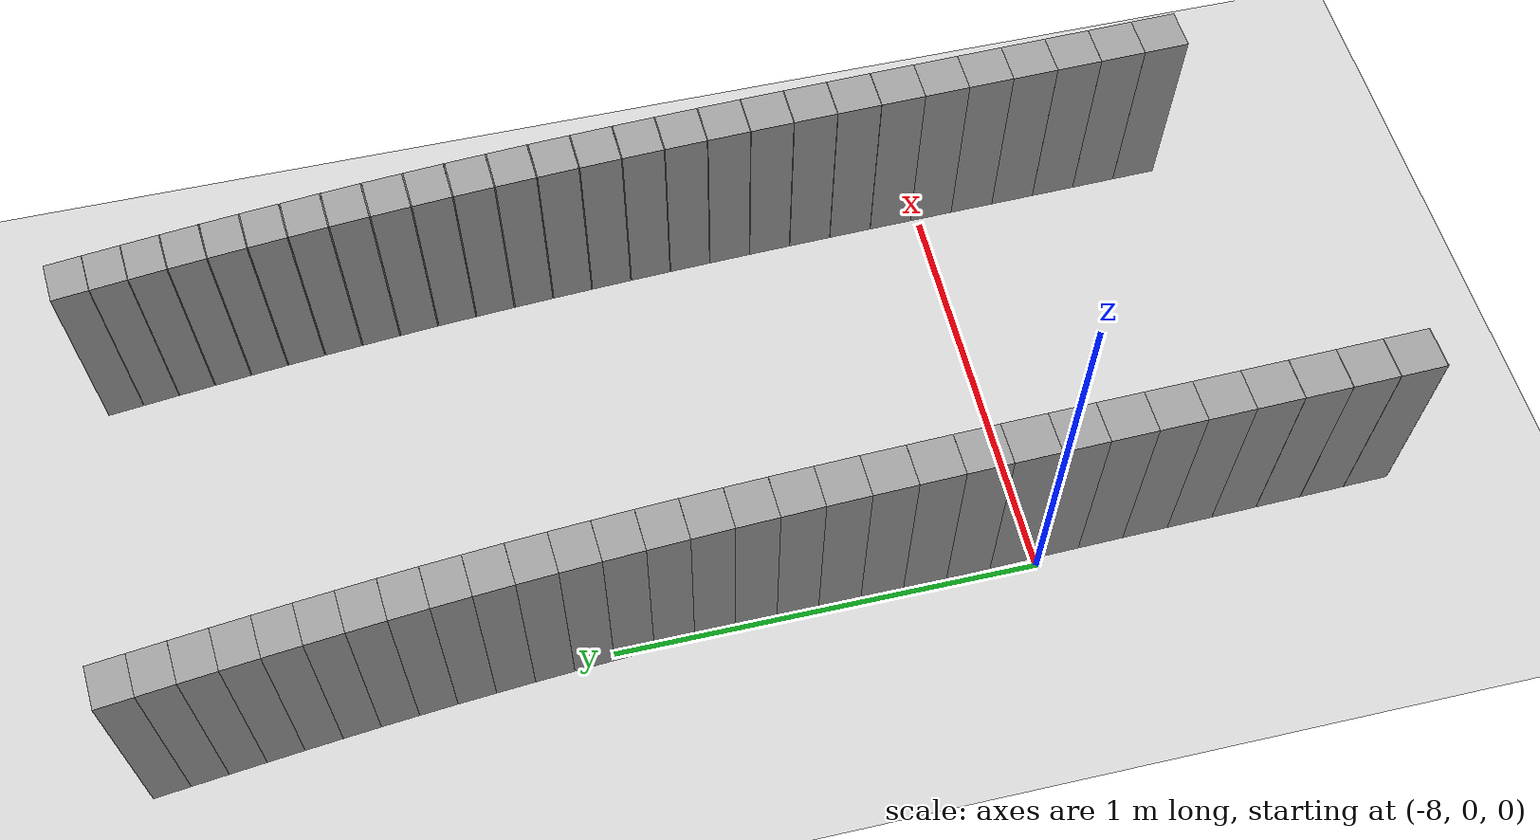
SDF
<sdf version="1.6">
 <world name="default">
  <include><uri>model://ground_plane</uri></include>
  <include><uri>model://sun</uri></include>
  <model name="wall_565_outward">
   <static>true</static>
   <link name="link">
    <collision name="collision">
     <geometry><box><size>0.0009904711786838329 0.1 0.5</size></box></geometry>
    </collision>
    <visual name="visual">
     <geometry><box><size>0.0009904711786838329 0.1 0.5</size></box></geometry>
     <material>
      <script><uri>file://media/materials/scripts/gazebo.material</uri><name>Gazebo/Gray</name></script>
     </material>
    </visual>
   </link>
   <pose>-7.909470699778825 -0.8856533040867389 0.25 0 0 1.59776523668052</pose>
  </model>
  <model name="wall_566_outward">
   <static>true</static>
   <link name="link">
    <collision name="collision">
     <geometry><box><size>0.10948559991900621 0.1 0.5</size></box></geometry>
    </collision>
    <visual name="visual">
     <geometry><box><size>0.10948559991900621 0.1 0.5</size></box></geometry>
     <material>
      <script><uri>file://media/materials/scripts/gazebo.material</uri><name>Gazebo/Gray</name></script>
     </material>
    </visual>
   </link>
   <pose>-7.910906026632476 -0.8304339199764261 0.25 0 0 1.5967747653396367</pose>
  </model>
  <model name="wall_567_outward">
   <static>true</static>
   <link name="link">
    <collision name="collision">
     <geometry><box><size>0.0009114035161884509 0.1 0.5</size></box></geometry>
    </collision>
    <visual name="visual">
     <geometry><box><size>0.0009114035161884509 0.1 0.5</size></box></geometry>
     <material>
      <script><uri>file://media/materials/scripts/gazebo.material</uri><name>Gazebo/Gray</name></script>
     </material>
    </visual>
   </link>
   <pose>-7.91233942103672 -0.7752540327744066 0.25 0 0 1.595863361697549</pose>
  </model>
  <model name="wall_568_outward">
   <static>true</static>
   <link name="link">
    <collision name="collision">
     <geometry><box><size>0.11027289737922352 0.1 0.5</size></box></geometry>
    </collision>
    <visual name="visual">
     <geometry><box><size>0.11027289737922352 0.1 0.5</size></box></geometry>
     <material>
      <script><uri>file://media/materials/scripts/gazebo.material</uri><name>Gazebo/Gray</name></script>
     </material>
    </visual>
   </link>
   <pose>-7.9136825691378965 -0.7196781106164452 0.25 0 0 1.5949519580549052</pose>
  </model>
  <model name="wall_569_outward">
   <static>true</static>
   <link name="link">
    <collision name="collision">
     <geometry><box><size>0.0007943153665070257 0.1 0.5</size></box></geometry>
    </collision>
    <visual name="visual">
     <geometry><box><size>0.0007943153665070257 0.1 0.5</size></box></geometry>
     <material>
      <script><uri>file://media/materials/scripts/gazebo.material</uri><name>Gazebo/Gray</name></script>
     </material>
    </visual>
   </link>
   <pose>-7.915023572625618 -0.6641606977389876 0.25 0 0 1.594157642605008</pose>
  </model>
  <model name="wall_570_outward">
   <static>true</static>
   <link name="link">
    <collision name="collision">
     <geometry><box><size>0.1107700738860688 0.1 0.5</size></box></geometry>
    </collision>
    <visual name="visual">
     <geometry><box><size>0.1107700738860688 0.1 0.5</size></box></geometry>
     <material>
      <script><uri>file://media/materials/scripts/gazebo.material</uri><name>Gazebo/Gray</name></script>
     </material>
    </visual>
   </link>
   <pose>-7.91628261797198 -0.6083927138390616 0.25 0 0 1.5933633271548366</pose>
  </model>
  <model name="wall_571_outward">
   <static>true</static>
   <link name="link">
    <collision name="collision">
     <geometry><box><size>0.0006459807935049317 0.1 0.5</size></box></geometry>
    </collision>
    <visual name="visual">
     <geometry><box><size>0.0006459807935049317 0.1 0.5</size></box></geometry>
     <material>
      <script><uri>file://media/materials/scripts/gazebo.material</uri><name>Gazebo/Gray</name></script>
     </material>
    </visual>
   </link>
   <pose>-7.917539465747936 -0.5526988664563061 0.25 0 0 1.5927173463156892</pose>
  </model>
  <model name="wall_572_outward">
   <static>true</static>
   <link name="link">
    <collision name="collision">
     <geometry><box><size>0.11097578941109719 0.1 0.5</size></box></geometry>
    </collision>
    <visual name="visual">
     <geometry><box><size>0.11097578941109719 0.1 0.5</size></box></geometry>
     <material>
      <script><uri>file://media/materials/scripts/gazebo.material</uri><name>Gazebo/Gray</name></script>
     </material>
    </visual>
   </link>
   <pose>-7.918726963513059 -0.49690061614788367 0.25 0 0 1.5920713654779728</pose>
  </model>
  <model name="wall_573_outward">
   <static>true</static>
   <link name="link">
    <collision name="collision">
     <geometry><box><size>0.11136111577710493 0.1 0.5</size></box></geometry>
    </collision>
    <visual name="visual">
     <geometry><box><size>0.11136111577710493 0.1 0.5</size></box></geometry>
     <material>
      <script><uri>file://media/materials/scripts/gazebo.material</uri><name>Gazebo/Gray</name></script>
     </material>
    </visual>
   </link>
   <pose>-7.921040506015078 -0.38575625173790984 0.25 0 0 1.5911481824226106</pose>
  </model>
  <model name="wall_574_outward">
   <static>true</static>
   <link name="link">
    <collision name="collision">
     <geometry><box><size>0.11080351393382115 0.1 0.5</size></box></geometry>
    </collision>
    <visual name="visual">
     <geometry><box><size>0.11080351393382115 0.1 0.5</size></box></geometry>
     <material>
      <script><uri>file://media/materials/scripts/gazebo.material</uri><name>Gazebo/Gray</name></script>
     </material>
    </visual>
   </link>
   <pose>-7.923272676933879 -0.27469637025297305 0.25 0 0 1.590635382971243</pose>
  </model>
  <model name="wall_575_outward">
   <static>true</static>
   <link name="link">
    <collision name="collision">
     <geometry><box><size>0.10985988575670115 0.1 0.5</size></box></geometry>
    </collision>
    <visual name="visual">
     <geometry><box><size>0.10985988575670115 0.1 0.5</size></box></geometry>
     <material>
      <script><uri>file://media/materials/scripts/gazebo.material</uri><name>Gazebo/Gray</name></script>
     </material>
    </visual>
   </link>
   <pose>-7.925458601188822 -0.1643863266579525 0.25 0 0 1.5905842359200444</pose>
  </model>
  <model name="wall_576_outward">
   <static>true</static>
   <link name="link">
    <collision name="collision">
     <geometry><box><size>0.10876825885237916 0.1 0.5</size></box></geometry>
    </collision>
    <visual name="visual">
     <geometry><box><size>0.10876825885237916 0.1 0.5</size></box></geometry>
     <material>
      <script><uri>file://media/materials/scripts/gazebo.material</uri><name>Gazebo/Gray</name></script>
     </material>
    </visual>
   </link>
   <pose>-7.927645987888699 -0.05509414422880934 0.25 0 0 1.5910335549778727</pose>
  </model>
  <model name="wall_577_outward">
   <static>true</static>
   <link name="link">
    <collision name="collision">
     <geometry><box><size>0.10749119447446537 0.1 0.5</size></box></geometry>
    </collision>
    <visual name="visual">
     <geometry><box><size>0.10749119447446537 0.1 0.5</size></box></geometry>
     <material>
      <script><uri>file://media/materials/scripts/gazebo.material</uri><name>Gazebo/Gray</name></script>
     </material>
    </visual>
   </link>
   <pose>-7.929886258337165 0.05301235983541928 0.25 0 0 1.5920045194320525</pose>
  </model>
  <model name="wall_578_outward">
   <static>true</static>
   <link name="link">
    <collision name="collision">
     <geometry><box><size>0.10605782925495823 0.1 0.5</size></box></geometry>
    </collision>
    <visual name="visual">
     <geometry><box><size>0.10605782925495823 0.1 0.5</size></box></geometry>
     <material>
      <script><uri>file://media/materials/scripts/gazebo.material</uri><name>Gazebo/Gray</name></script>
     </material>
    </visual>
   </link>
   <pose>-7.9322309024696755 0.1597610951266567 0.25 0 0 1.5935195204096275</pose>
  </model>
  <model name="wall_579_outward">
   <static>true</static>
   <link name="link">
    <collision name="collision">
     <geometry><box><size>0.10451509297985792 0.1 0.5</size></box></geometry>
    </collision>
    <visual name="visual">
     <geometry><box><size>0.10451509297985792 0.1 0.5</size></box></geometry>
     <material>
      <script><uri>file://media/materials/scripts/gazebo.material</uri><name>Gazebo/Gray</name></script>
     </material>
    </visual>
   </link>
   <pose>-7.9347313731540225 0.2650178034506897 0.25 0 0 1.595591230758415</pose>
  </model>
  <model name="wall_580_outward">
   <static>true</static>
   <link name="link">
    <collision name="collision">
     <geometry><box><size>0.10291101563685588 0.1 0.5</size></box></geometry>
    </collision>
    <visual name="visual">
     <geometry><box><size>0.10291101563685588 0.1 0.5</size></box></geometry>
     <material>
      <script><uri>file://media/materials/scripts/gazebo.material</uri><name>Gazebo/Gray</name></script>
     </material>
    </visual>
   </link>
   <pose>-7.937438138534475 0.3686954403993111 0.25 0 0 1.598224960108446</pose>
  </model>
  <model name="wall_581_outward">
   <static>true</static>
   <link name="link">
    <collision name="collision">
     <geometry><box><size>0.10128633151817584 0.1 0.5</size></box></geometry>
    </collision>
    <visual name="visual">
     <geometry><box><size>0.10128633151817584 0.1 0.5</size></box></geometry>
     <material>
      <script><uri>file://media/materials/scripts/gazebo.material</uri><name>Gazebo/Gray</name></script>
     </material>
    </visual>
   </link>
   <pose>-7.9403999589887855 0.47075101429193406 0.25 0 0 1.6014201144691298</pose>
  </model>
  <model name="wall_582_outward">
   <static>true</static>
   <link name="link">
    <collision name="collision">
     <geometry><box><size>0.09967947623095003 0.1 0.5</size></box></geometry>
    </collision>
    <visual name="visual">
     <geometry><box><size>0.09967947623095003 0.1 0.5</size></box></geometry>
     <material>
      <script><uri>file://media/materials/scripts/gazebo.material</uri><name>Gazebo/Gray</name></script>
     </material>
    </visual>
   </link>
   <pose>-7.943663322600219 0.5711807358953906 0.25 0 0 1.605167649654883</pose>
  </model>
  <model name="wall_583_outward">
   <static>true</static>
   <link name="link">
    <collision name="collision">
     <geometry><box><size>0.09811929125582569 0.1 0.5</size></box></geometry>
    </collision>
    <visual name="visual">
     <geometry><box><size>0.09811929125582569 0.1 0.5</size></box></geometry>
     <material>
      <script><uri>file://media/materials/scripts/gazebo.material</uri><name>Gazebo/Gray</name></script>
     </material>
    </visual>
   </link>
   <pose>-7.94727191545897 0.6700140365520986 0.25 0 0 1.6094501852731933</pose>
  </model>
  <model name="wall_584_outward">
   <static>true</static>
   <link name="link">
    <collision name="collision">
     <geometry><box><size>0.09662949895267918 0.1 0.5</size></box></geometry>
    </collision>
    <visual name="visual">
     <geometry><box><size>0.09662949895267918 0.1 0.5</size></box></geometry>
     <material>
      <script><uri>file://media/materials/scripts/gazebo.material</uri><name>Gazebo/Gray</name></script>
     </material>
    </visual>
   </link>
   <pose>-7.9512660010502225 0.7673062035931835 0.25 0 0 1.6142379942648704</pose>
  </model>
  <model name="wall_585_outward">
   <static>true</static>
   <link name="link">
    <collision name="collision">
     <geometry><box><size>0.09521974723458548 0.1 0.5</size></box></geometry>
    </collision>
    <visual name="visual">
     <geometry><box><size>0.09521974723458548 0.1 0.5</size></box></geometry>
     <material>
      <script><uri>file://media/materials/scripts/gazebo.material</uri><name>Gazebo/Gray</name></script>
     </material>
    </visual>
   </link>
   <pose>-7.955681642949812 0.8631288102689685 0.25 0 0 1.6194909488719353</pose>
  </model>
  <model name="wall_586_outward">
   <static>true</static>
   <link name="link">
    <collision name="collision">
     <geometry><box><size>0.09389558301838698 0.1 0.5</size></box></geometry>
    </collision>
    <visual name="visual">
     <geometry><box><size>0.09389558301838698 0.1 0.5</size></box></geometry>
     <material>
      <script><uri>file://media/materials/scripts/gazebo.material</uri><name>Gazebo/Gray</name></script>
     </material>
    </visual>
   </link>
   <pose>-7.960549550287578 0.9575607114370959 0.25 0 0 1.6251489331067197</pose>
  </model>
  <model name="wall_587_outward">
   <static>true</static>
   <link name="link">
    <collision name="collision">
     <geometry><box><size>0.09265575094804471 0.1 0.5</size></box></geometry>
    </collision>
    <visual name="visual">
     <geometry><box><size>0.09265575094804471 0.1 0.5</size></box></geometry>
     <material>
      <script><uri>file://media/materials/scripts/gazebo.material</uri><name>Gazebo/Gray</name></script>
     </material>
    </visual>
   </link>
   <pose>-7.9658941887946915 1.0506827103212364 0.25 0 0 1.6311456661804231</pose>
  </model>
  <model name="wall_588_outward">
   <static>true</static>
   <link name="link">
    <collision name="collision">
     <geometry><box><size>0.09149661331062425 0.1 0.5</size></box></geometry>
    </collision>
    <visual name="visual">
     <geometry><box><size>0.09149661331062425 0.1 0.5</size></box></geometry>
     <material>
      <script><uri>file://media/materials/scripts/gazebo.material</uri><name>Gazebo/Gray</name></script>
     </material>
    </visual>
   </link>
   <pose>-7.971732469527199 1.1425731627949953 0.25 0 0 1.637386151527532</pose>
  </model>
  <model name="wall_589_outward">
   <static>true</static>
   <link name="link">
    <collision name="collision">
     <geometry><box><size>0.09041226791227094 0.1 0.5</size></box></geometry>
    </collision>
    <visual name="visual">
     <geometry><box><size>0.09041226791227094 0.1 0.5</size></box></geometry>
     <material>
      <script><uri>file://media/materials/scripts/gazebo.material</uri><name>Gazebo/Gray</name></script>
     </material>
    </visual>
   </link>
   <pose>-7.978072095128342 1.23330593185424 0.25 0 0 1.6437605546736738</pose>
  </model>
  <model name="wall_590_outward">
   <static>true</static>
   <link name="link">
    <collision name="collision">
     <geometry><box><size>0.08939809585021044 0.1 0.5</size></box></geometry>
    </collision>
    <visual name="visual">
     <geometry><box><size>0.08939809585021044 0.1 0.5</size></box></geometry>
     <material>
      <script><uri>file://media/materials/scripts/gazebo.material</uri><name>Gazebo/Gray</name></script>
     </material>
    </visual>
   </link>
   <pose>-7.984910542884312 1.3229502015068886 0.25 0 0 1.650141714351915</pose>
  </model>
  <model name="wall_591_outward">
   <static>true</static>
   <link name="link">
    <collision name="collision">
     <geometry><box><size>0.08845018340987948 0.1 0.5</size></box></geometry>
    </collision>
    <visual name="visual">
     <geometry><box><size>0.08845018340987948 0.1 0.5</size></box></geometry>
     <material>
      <script><uri>file://media/materials/scripts/gazebo.material</uri><name>Gazebo/Gray</name></script>
     </material>
    </visual>
   </link>
   <pose>-7.992233909618109 1.4115718350079118 0.25 0 0 1.6563821958537863</pose>
  </model>
  <model name="wall_592_outward">
   <static>true</static>
   <link name="link">
    <collision name="collision">
     <geometry><box><size>0.08757070985106806 0.1 0.5</size></box></geometry>
    </collision>
    <visual name="visual">
     <geometry><box><size>0.08757070985106806 0.1 0.5</size></box></geometry>
     <material>
      <script><uri>file://media/materials/scripts/gazebo.material</uri><name>Gazebo/Gray</name></script>
     </material>
    </visual>
   </link>
   <pose>-8.0000165715398 1.499237109703999 0.25 0 0 1.6623299547498702</pose>
  </model>
  <model name="wall_593_outward">
   <static>true</static>
   <link name="link">
    <collision name="collision">
     <geometry><box><size>0.08676839551176398 0.1 0.5</size></box></geometry>
    </collision>
    <visual name="visual">
     <geometry><box><size>0.08676839551176398 0.1 0.5</size></box></geometry>
     <material>
      <script><uri>file://media/materials/scripts/gazebo.material</uri><name>Gazebo/Gray</name></script>
     </material>
    </visual>
   </link>
   <pose>-8.008220946401357 1.586019378409231 0.25 0 0 1.667807110628891</pose>
  </model>
  <model name="wall_594_outward">
   <static>true</static>
   <link name="link">
    <collision name="collision">
     <geometry><box><size>0.0860488833883912 0.1 0.5</size></box></geometry>
    </collision>
    <visual name="visual">
     <geometry><box><size>0.0860488833883912 0.1 0.5</size></box></geometry>
     <material>
      <script><uri>file://media/materials/scripts/gazebo.material</uri><name>Gazebo/Gray</name></script>
     </material>
    </visual>
   </link>
   <pose>-8.016797108859137 1.6720011141656599 0.25 0 0 1.6726360139932617</pose>
  </model>
  <model name="wall_595_outward">
   <static>true</static>
   <link name="link">
    <collision name="collision">
     <geometry><box><size>0.08542233456842228 0.1 0.5</size></box></geometry>
    </collision>
    <visual name="visual">
     <geometry><box><size>0.08542233456842228 0.1 0.5</size></box></geometry>
     <material>
      <script><uri>file://media/materials/scripts/gazebo.material</uri><name>Gazebo/Gray</name></script>
     </material>
    </visual>
   </link>
   <pose>-8.025683353004805 1.7572747904641042 0.25 0 0 1.6766387668226348</pose>
  </model>
  <model name="wall_596_outward">
   <static>true</static>
   <link name="link">
    <collision name="collision">
     <geometry><box><size>0.0848913991797672 0.1 0.5</size></box></geometry>
    </collision>
    <visual name="visual">
     <geometry><box><size>0.0848913991797672 0.1 0.5</size></box></geometry>
     <material>
      <script><uri>file://media/materials/scripts/gazebo.material</uri><name>Gazebo/Gray</name></script>
     </material>
    </visual>
   </link>
   <pose>-8.034806338398889 1.8419414710402977 0.25 0 0 1.679638526341286</pose>
  </model>
  <model name="wall_597_outward">
   <static>true</static>
   <link name="link">
    <collision name="collision">
     <geometry><box><size>0.08446162881735658 0.1 0.5</size></box></geometry>
    </collision>
    <visual name="visual">
     <geometry><box><size>0.08446162881735658 0.1 0.5</size></box></geometry>
     <material>
      <script><uri>file://media/materials/scripts/gazebo.material</uri><name>Gazebo/Gray</name></script>
     </material>
    </visual>
   </link>
   <pose>-8.04408253425917 1.9261083173837639 0.25 0 0 1.681496803564057</pose>
  </model>
  <model name="wall_598_outward">
   <static>true</static>
   <link name="link">
    <collision name="collision">
     <geometry><box><size>0.08393782488730488 0.1 0.5</size></box></geometry>
    </collision>
    <visual name="visual">
     <geometry><box><size>0.08393782488730488 0.1 0.5</size></box></geometry>
     <material>
      <script><uri>file://media/materials/scripts/gazebo.material</uri><name>Gazebo/Gray</name></script>
     </material>
    </visual>
   </link>
   <pose>-8.0534088474611 2.0097899359035707 0.25 0 0 1.6820815232842583</pose>
  </model>
  <model name="wall_342_inward">
   <static>true</static>
   <link name="link">
    <collision name="collision">
     <geometry><box><size>0.1100499256138075 0.1 0.5</size></box></geometry>
    </collision>
    <visual name="visual">
     <geometry><box><size>0.1100499256138075 0.1 0.5</size></box></geometry>
     <material>
      <script><uri>file://media/materials/scripts/gazebo.material</uri><name>Gazebo/Gray</name></script>
     </material>
    </visual>
   </link>
   <pose>-6.9165380787145265 -0.5857905546479117 0.25 0 0 1.5933633271548302</pose>
  </model>
  <model name="wall_343_inward">
   <static>true</static>
   <link name="link">
    <collision name="collision">
     <geometry><box><size>0.11042152284930101 0.1 0.5</size></box></geometry>
    </collision>
    <visual name="visual">
     <geometry><box><size>0.11042152284930101 0.1 0.5</size></box></geometry>
     <material>
      <script><uri>file://media/materials/scripts/gazebo.material</uri><name>Gazebo/Gray</name></script>
     </material>
    </visual>
   </link>
   <pose>-6.918954244152119 -0.47558133556638077 0.25 0 0 1.5920713654779746</pose>
  </model>
  <model name="wall_344_inward">
   <static>true</static>
   <link name="link">
    <collision name="collision">
     <geometry><box><size>0.11053942047686938 0.1 0.5</size></box></geometry>
    </collision>
    <visual name="visual">
     <geometry><box><size>0.11053942047686938 0.1 0.5</size></box></geometry>
     <material>
      <script><uri>file://media/materials/scripts/gazebo.material</uri><name>Gazebo/Gray</name></script>
     </material>
    </visual>
   </link>
   <pose>-6.921253423976882 -0.3651248021266723 0.25 0 0 1.5911462611551643</pose>
  </model>
  <model name="wall_345_inward">
   <static>true</static>
   <link name="link">
    <collision name="collision">
     <geometry><box><size>0.11040727196843404 0.1 0.5</size></box></geometry>
    </collision>
    <visual name="visual">
     <geometry><box><size>0.11040727196843404 0.1 0.5</size></box></geometry>
     <material>
      <script><uri>file://media/materials/scripts/gazebo.material</uri><name>Gazebo/Gray</name></script>
     </material>
    </visual>
   </link>
   <pose>-6.923473164942806 -0.25467376239634926 0.25 0 0 1.590634792737394</pose>
  </model>
  <model name="wall_346_inward">
   <static>true</static>
   <link name="link">
    <collision name="collision">
     <geometry><box><size>0.1101589574333573 0.1 0.5</size></box></geometry>
    </collision>
    <visual name="visual">
     <geometry><box><size>0.1101589574333573 0.1 0.5</size></box></geometry>
     <material>
      <script><uri>file://media/materials/scripts/gazebo.material</uri><name>Gazebo/Gray</name></script>
     </material>
    </visual>
   </link>
   <pose>-6.9256581100653944 -0.14441229407985653 0.25 0 0 1.5905846882874777</pose>
  </model>
  <model name="wall_347_inward">
   <static>true</static>
   <link name="link">
    <collision name="collision">
     <geometry><box><size>0.10960881335675214 0.1 0.5</size></box></geometry>
    </collision>
    <visual name="visual">
     <geometry><box><size>0.10960881335675214 0.1 0.5</size></box></geometry>
     <material>
      <script><uri>file://media/materials/scripts/gazebo.material</uri><name>Gazebo/Gray</name></script>
     </material>
    </visual>
   </link>
   <pose>-6.927857102973505 -0.03455041677170457 0.25 0 0 1.591035705288301</pose>
  </model>
  <model name="wall_348_inward">
   <static>true</static>
   <link name="link">
    <collision name="collision">
     <geometry><box><size>0.10811268592359864 0.1 0.5</size></box></geometry>
    </collision>
    <visual name="visual">
     <geometry><box><size>0.10811268592359864 0.1 0.5</size></box></geometry>
     <material>
      <script><uri>file://media/materials/scripts/gazebo.material</uri><name>Gazebo/Gray</name></script>
     </material>
    </visual>
   </link>
   <pose>-6.930112585771598 0.07428695194391373 0.25 0 0 1.5920045194320551</pose>
  </model>
  <model name="wall_349_inward">
   <static>true</static>
   <link name="link">
    <collision name="collision">
     <geometry><box><size>0.0007575004163432048 0.1 0.5</size></box></geometry>
    </collision>
    <visual name="visual">
     <geometry><box><size>0.0007575004163432048 0.1 0.5</size></box></geometry>
     <material>
      <script><uri>file://media/materials/scripts/gazebo.material</uri><name>Gazebo/Gray</name></script>
     </material>
    </visual>
   </link>
   <pose>-6.931267256007985 0.12870979726938875 0.25 0 0 1.5927620199215649</pose>
  </model>
  <model name="wall_350_inward">
   <static>true</static>
   <link name="link">
    <collision name="collision">
     <geometry><box><size>0.10695450734477331 0.1 0.5</size></box></geometry>
    </collision>
    <visual name="visual">
     <geometry><box><size>0.10695450734477331 0.1 0.5</size></box></geometry>
     <material>
      <script><uri>file://media/materials/scripts/gazebo.material</uri><name>Gazebo/Gray</name></script>
     </material>
    </visual>
   </link>
   <pose>-6.932490644267173 0.18255190405885047 0.25 0 0 1.5935195204096277</pose>
  </model>
  <model name="wall_351_inward">
   <static>true</static>
   <link name="link">
    <collision name="collision">
     <geometry><box><size>0.0010358549891494489 0.1 0.5</size></box></geometry>
    </collision>
    <visual name="visual">
     <geometry><box><size>0.0010358549891494489 0.1 0.5</size></box></geometry>
     <material>
      <script><uri>file://media/materials/scripts/gazebo.material</uri><name>Gazebo/Gray</name></script>
     </material>
    </visual>
   </link>
   <pose>-6.933718017991439 0.23653313332676204 0.25 0 0 1.594555375583672</pose>
  </model>
  <model name="wall_352_inward">
   <static>true</static>
   <link name="link">
    <collision name="collision">
     <geometry><box><size>0.10569145347005314 0.1 0.5</size></box></geometry>
    </collision>
    <visual name="visual">
     <geometry><box><size>0.10569145347005314 0.1 0.5</size></box></geometry>
     <material>
      <script><uri>file://media/materials/scripts/gazebo.material</uri><name>Gazebo/Gray</name></script>
     </material>
    </visual>
   </link>
   <pose>-6.93504049276199 0.28988039777255653 0.25 0 0 1.5955912307584161</pose>
  </model>
  <model name="wall_353_inward">
   <static>true</static>
   <link name="link">
    <collision name="collision">
     <geometry><box><size>0.0013168642944082322 0.1 0.5</size></box></geometry>
    </collision>
    <visual name="visual">
     <geometry><box><size>0.0013168642944082322 0.1 0.5</size></box></geometry>
     <material>
      <script><uri>file://media/materials/scripts/gazebo.material</uri><name>Gazebo/Gray</name></script>
     </material>
    </visual>
   </link>
   <pose>-6.93636785409983 0.34336808859235257 0.25 0 0 1.5969080954337886</pose>
  </model>
  <model name="wall_354_inward">
   <static>true</static>
   <link name="link">
    <collision name="collision">
     <geometry><box><size>0.10436823762500567 0.1 0.5</size></box></geometry>
    </collision>
    <visual name="visual">
     <geometry><box><size>0.10436823762500567 0.1 0.5</size></box></geometry>
     <material>
      <script><uri>file://media/materials/scripts/gazebo.material</uri><name>Gazebo/Gray</name></script>
     </material>
    </visual>
   </link>
   <pose>-6.937816204567288 0.39619078649077855 0.25 0 0 1.5982249601084386</pose>
  </model>
  <model name="wall_355_inward">
   <static>true</static>
   <link name="link">
    <collision name="collision">
     <geometry><box><size>0.0015975765007783347 0.1 0.5</size></box></geometry>
    </collision>
    <visual name="visual">
     <geometry><box><size>0.0015975765007783347 0.1 0.5</size></box></geometry>
     <material>
      <script><uri>file://media/materials/scripts/gazebo.material</uri><name>Gazebo/Gray</name></script>
     </material>
    </visual>
   </link>
   <pose>-6.939270546700817 0.4491537284729367 0.25 0 0 1.5998225372885564</pose>
  </model>
  <model name="wall_356_inward">
   <static>true</static>
   <link name="link">
    <collision name="collision">
     <geometry><box><size>0.10302200568072019 0.1 0.5</size></box></geometry>
    </collision>
    <visual name="visual">
     <geometry><box><size>0.10302200568072019 0.1 0.5</size></box></geometry>
     <material>
      <script><uri>file://media/materials/scripts/gazebo.material</uri><name>Gazebo/Gray</name></script>
     </material>
    </visual>
   </link>
   <pose>-6.94087094470491 0.50143903104613 0.25 0 0 1.6014201144691353</pose>
  </model>
  <model name="wall_357_inward">
   <static>true</static>
   <link name="link">
    <collision name="collision">
     <geometry><box><size>0.001873766496406433 0.1 0.5</size></box></geometry>
    </collision>
    <visual name="visual">
     <geometry><box><size>0.001873766496406433 0.1 0.5</size></box></geometry>
     <material>
      <script><uri>file://media/materials/scripts/gazebo.material</uri><name>Gazebo/Gray</name></script>
     </material>
    </visual>
   </link>
   <pose>-6.942478601225114 0.5538622704179165 0.25 0 0 1.603293882061993</pose>
  </model>
  <model name="wall_358_inward">
   <static>true</static>
   <link name="link">
    <collision name="collision">
     <geometry><box><size>0.10168699666468917 0.1 0.5</size></box></geometry>
    </collision>
    <visual name="visual">
     <geometry><box><size>0.10168699666468917 0.1 0.5</size></box></geometry>
     <material>
      <script><uri>file://media/materials/scripts/gazebo.material</uri><name>Gazebo/Gray</name></script>
     </material>
    </visual>
   </link>
   <pose>-6.944256256507654 0.6056121273363558 0.25 0 0 1.6051676496548835</pose>
  </model>
  <model name="wall_359_inward">
   <static>true</static>
   <link name="link">
    <collision name="collision">
     <geometry><box><size>0.002141266172858052 0.1 0.5</size></box></geometry>
    </collision>
    <visual name="visual">
     <geometry><box><size>0.002141266172858052 0.1 0.5</size></box></geometry>
     <material>
      <script><uri>file://media/materials/scripts/gazebo.material</uri><name>Gazebo/Gray</name></script>
     </material>
    </visual>
   </link>
   <pose>-6.946042553636076 0.657495515178227 0.25 0 0 1.607308917464105</pose>
  </model>
  <model name="wall_360_inward">
   <static>true</static>
   <link name="link">
    <collision name="collision">
     <geometry><box><size>0.10038688133122003 0.1 0.5</size></box></geometry>
    </collision>
    <visual name="visual">
     <geometry><box><size>0.10038688133122003 0.1 0.5</size></box></geometry>
     <material>
      <script><uri>file://media/materials/scripts/gazebo.material</uri><name>Gazebo/Gray</name></script>
     </material>
    </visual>
   </link>
   <pose>-6.948021323585044 0.7087213824793275 0.25 0 0 1.6094501852731897</pose>
  </model>
  <model name="wall_361_inward">
   <static>true</static>
   <link name="link">
    <collision name="collision">
     <geometry><box><size>0.0023939022093533747 0.1 0.5</size></box></geometry>
    </collision>
    <visual name="visual">
     <geometry><box><size>0.0023939022093533747 0.1 0.5</size></box></geometry>
     <material>
      <script><uri>file://media/materials/scripts/gazebo.material</uri><name>Gazebo/Gray</name></script>
     </material>
    </visual>
   </link>
   <pose>-6.950010129000854 0.760073273145804 0.25 0 0 1.6118440897688933</pose>
  </model>
  <model name="wall_362_inward">
   <static>true</static>
   <link name="link">
    <collision name="collision">
     <geometry><box><size>0.09913969515850869 0.1 0.5</size></box></geometry>
    </collision>
    <visual name="visual">
     <geometry><box><size>0.09913969515850869 0.1 0.5</size></box></geometry>
     <material>
      <script><uri>file://media/materials/scripts/gazebo.material</uri><name>Gazebo/Gray</name></script>
     </material>
    </visual>
   </link>
   <pose>-6.952211966961592 0.8107922973693349 0.25 0 0 1.6142379942648741</pose>
  </model>
  <model name="wall_363_inward">
   <static>true</static>
   <link name="link">
    <collision name="collision">
     <geometry><box><size>0.002626474283790482 0.1 0.5</size></box></geometry>
    </collision>
    <visual name="visual">
     <geometry><box><size>0.002626474283790482 0.1 0.5</size></box></geometry>
     <material>
      <script><uri>file://media/materials/scripts/gazebo.material</uri><name>Gazebo/Gray</name></script>
     </material>
    </visual>
   </link>
   <pose>-6.954425163555232 0.8616272225931813 0.25 0 0 1.616864471568468</pose>
  </model>
  <model name="wall_364_inward">
   <static>true</static>
   <link name="link">
    <collision name="collision">
     <geometry><box><size>0.09794748873828067 0.1 0.5</size></box></geometry>
    </collision>
    <visual name="visual">
     <geometry><box><size>0.09794748873828067 0.1 0.5</size></box></geometry>
     <material>
      <script><uri>file://media/materials/scripts/gazebo.material</uri><name>Gazebo/Gray</name></script>
     </material>
    </visual>
   </link>
   <pose>-6.956869456199804 0.9118547598540863 0.25 0 0 1.6194909488719351</pose>
  </model>
  <model name="wall_365_inward">
   <static>true</static>
   <link name="link">
    <collision name="collision">
     <geometry><box><size>0.0028289883438959605 0.1 0.5</size></box></geometry>
    </collision>
    <visual name="visual">
     <geometry><box><size>0.0028289883438959605 0.1 0.5</size></box></geometry>
     <material>
      <script><uri>file://media/materials/scripts/gazebo.material</uri><name>Gazebo/Gray</name></script>
     </material>
    </visual>
   </link>
   <pose>-6.959326119453154 0.9621830703217307 0.25 0 0 1.6223199409894369</pose>
  </model>
  <model name="wall_366_inward">
   <static>true</static>
   <link name="link">
    <collision name="collision">
     <geometry><box><size>0.09680927061182094 0.1 0.5</size></box></geometry>
    </collision>
    <visual name="visual">
     <geometry><box><size>0.09680927061182094 0.1 0.5</size></box></geometry>
     <material>
      <script><uri>file://media/materials/scripts/gazebo.material</uri><name>Gazebo/Gray</name></script>
     </material>
    </visual>
   </link>
   <pose>-6.962028589962808 1.011928841670791 0.25 0 0 1.6251489331067173</pose>
  </model>
  <model name="wall_367_inward">
   <static>true</static>
   <link name="link">
    <collision name="collision">
     <geometry><box><size>0.002998362044202604 0.1 0.5</size></box></geometry>
    </collision>
    <visual name="visual">
     <geometry><box><size>0.002998362044202604 0.1 0.5</size></box></geometry>
     <material>
      <script><uri>file://media/materials/scripts/gazebo.material</uri><name>Gazebo/Gray</name></script>
     </material>
    </visual>
   </link>
   <pose>-6.964744145226499 1.061758712143385 0.25 0 0 1.628147299643415</pose>
  </model>
  <model name="wall_368_inward">
   <static>true</static>
   <link name="link">
    <collision name="collision">
     <geometry><box><size>0.0957150651089092 0.1 0.5</size></box></geometry>
    </collision>
    <visual name="visual">
     <geometry><box><size>0.0957150651089092 0.1 0.5</size></box></geometry>
     <material>
      <script><uri>file://media/materials/scripts/gazebo.material</uri><name>Gazebo/Gray</name></script>
     </material>
    </visual>
   </link>
   <pose>-6.967716495244774 1.111025837748869 0.25 0 0 1.6311456661804253</pose>
  </model>
  <model name="wall_369_inward">
   <static>true</static>
   <link name="link">
    <collision name="collision">
     <geometry><box><size>0.0031202376104873947 0.1 0.5</size></box></geometry>
    </collision>
    <visual name="visual">
     <geometry><box><size>0.0031202376104873947 0.1 0.5</size></box></geometry>
     <material>
      <script><uri>file://media/materials/scripts/gazebo.material</uri><name>Gazebo/Gray</name></script>
     </material>
    </visual>
   </link>
   <pose>-6.970701866518251 1.1603532246384254 0.25 0 0 1.6342659088540192</pose>
  </model>
  <model name="wall_370_inward">
   <static>true</static>
   <link name="link">
    <collision name="collision">
     <geometry><box><size>0.09465034589309539 0.1 0.5</size></box></geometry>
    </collision>
    <visual name="visual">
     <geometry><box><size>0.09465034589309539 0.1 0.5</size></box></geometry>
     <material>
      <script><uri>file://media/materials/scripts/gazebo.material</uri><name>Gazebo/Gray</name></script>
     </material>
    </visual>
   </link>
   <pose>-6.973949866652891 1.2091304890753842 0.25 0 0 1.6373861515275332</pose>
  </model>
  <model name="wall_371_inward">
   <static>true</static>
   <link name="link">
    <collision name="collision">
     <geometry><box><size>0.0031871961770035414 0.1 0.5</size></box></geometry>
    </collision>
    <visual name="visual">
     <geometry><box><size>0.0031871961770035414 0.1 0.5</size></box></geometry>
     <material>
      <script><uri>file://media/materials/scripts/gazebo.material</uri><name>Gazebo/Gray</name></script>
     </material>
    </visual>
   </link>
   <pose>-6.977210019492302 1.2579404962146563 0.25 0 0 1.6405733531006774</pose>
  </model>
  <model name="wall_372_inward">
   <static>true</static>
   <link name="link">
    <collision name="collision">
     <geometry><box><size>0.09360116942775941 0.1 0.5</size></box></geometry>
    </collision>
    <visual name="visual">
     <geometry><box><size>0.09360116942775941 0.1 0.5</size></box></geometry>
     <material>
      <script><uri>file://media/materials/scripts/gazebo.material</uri><name>Gazebo/Gray</name></script>
     </material>
    </visual>
   </link>
   <pose>-6.98073286523955 1.3062062783935047 0.25 0 0 1.6437605546736693</pose>
  </model>
  <model name="wall_373_inward">
   <static>true</static>
   <link name="link">
    <collision name="collision">
     <geometry><box><size>0.0031905744258824793 0.1 0.5</size></box></geometry>
    </collision>
    <visual name="visual">
     <geometry><box><size>0.0031905744258824793 0.1 0.5</size></box></geometry>
     <material>
      <script><uri>file://media/materials/scripts/gazebo.material</uri><name>Gazebo/Gray</name></script>
     </material>
    </visual>
   </link>
   <pose>-6.984265976056848 1.35447300386233 0.25 0 0 1.6469511345127932</pose>
  </model>
  <model name="wall_374_inward">
   <static>true</static>
   <link name="link">
    <collision name="collision">
     <geometry><box><size>0.09255351662158211 0.1 0.5</size></box></geometry>
    </collision>
    <visual name="visual">
     <geometry><box><size>0.09255351662158211 0.1 0.5</size></box></geometry>
     <material>
      <script><uri>file://media/materials/scripts/gazebo.material</uri><name>Gazebo/Gray</name></script>
     </material>
    </visual>
   </link>
   <pose>-6.988055343184975 1.4021948299786295 0.25 0 0 1.6501417143519164</pose>
  </model>
  <model name="wall_375_inward">
   <static>true</static>
   <link name="link">
    <collision name="collision">
     <geometry><box><size>0.0031202356878769193 0.1 0.5</size></box></geometry>
    </collision>
    <visual name="visual">
     <geometry><box><size>0.0031202356878769193 0.1 0.5</size></box></geometry>
     <material>
      <script><uri>file://media/materials/scripts/gazebo.material</uri><name>Gazebo/Gray</name></script>
     </material>
    </visual>
   </link>
   <pose>-6.991851849243379 1.4498808086210686 0.25 0 0 1.6532619551028571</pose>
  </model>
  <model name="wall_376_inward">
   <static>true</static>
   <link name="link">
    <collision name="collision">
     <geometry><box><size>0.09149725295596016 0.1 0.5</size></box></geometry>
    </collision>
    <visual name="visual">
     <geometry><box><size>0.09149725295596016 0.1 0.5</size></box></geometry>
     <material>
      <script><uri>file://media/materials/scripts/gazebo.material</uri><name>Gazebo/Gray</name></script>
     </material>
    </visual>
   </link>
   <pose>-6.995891017218041 1.4970168003525122 0.25 0 0 1.6563821958537852</pose>
  </model>
  <model name="wall_377_inward">
   <static>true</static>
   <link name="link">
    <collision name="collision">
     <geometry><box><size>0.002973875064558786 0.1 0.5</size></box></geometry>
    </collision>
    <visual name="visual">
     <geometry><box><size>0.002973875064558786 0.1 0.5</size></box></geometry>
     <material>
      <script><uri>file://media/materials/scripts/gazebo.material</uri><name>Gazebo/Gray</name></script>
     </material>
    </visual>
   </link>
   <pose>-6.999933185621327 1.5440790865310845 0.25 0 0 1.659356075301785</pose>
  </model>
  <model name="wall_378_inward">
   <static>true</static>
   <link name="link">
    <collision name="collision">
     <geometry><box><size>0.09042694635145708 0.1 0.5</size></box></geometry>
    </collision>
    <visual name="visual">
     <geometry><box><size>0.09042694635145708 0.1 0.5</size></box></geometry>
     <material>
      <script><uri>file://media/materials/scripts/gazebo.material</uri><name>Gazebo/Gray</name></script>
     </material>
    </visual>
   </link>
   <pose>-7.004197472948578 1.590584393962729 0.25 0 0 1.662329954749855</pose>
  </model>
  <model name="wall_379_inward">
   <static>true</static>
   <link name="link">
    <collision name="collision">
     <geometry><box><size>0.0027385745163857737 0.1 0.5</size></box></geometry>
    </collision>
    <visual name="visual">
     <geometry><box><size>0.0027385745163857737 0.1 0.5</size></box></geometry>
     <material>
      <script><uri>file://media/materials/scripts/gazebo.material</uri><name>Gazebo/Gray</name></script>
     </material>
    </visual>
   </link>
   <pose>-7.008459144134517 1.636971798115499 0.25 0 0 1.6650685326893944</pose>
  </model>
  <model name="wall_380_inward">
   <static>true</static>
   <link name="link">
    <collision name="collision">
     <geometry><box><size>0.0893449160916682 0.1 0.5</size></box></geometry>
    </collision>
    <visual name="visual">
     <geometry><box><size>0.0893449160916682 0.1 0.5</size></box></geometry>
     <material>
      <script><uri>file://media/materials/scripts/gazebo.material</uri><name>Gazebo/Gray</name></script>
     </material>
    </visual>
   </link>
   <pose>-7.01291495462467 1.6827974198216797 0.25 0 0 1.6678071106288945</pose>
  </model>
  <model name="wall_381_inward">
   <static>true</static>
   <link name="link">
    <collision name="collision">
     <geometry><box><size>0.0024144493363150088 0.1 0.5</size></box></geometry>
    </collision>
    <visual name="visual">
     <geometry><box><size>0.0024144493363150088 0.1 0.5</size></box></geometry>
     <material>
      <script><uri>file://media/materials/scripts/gazebo.material</uri><name>Gazebo/Gray</name></script>
     </material>
    </visual>
   </link>
   <pose>-7.017361701442388 1.728461097009227 0.25 0 0 1.6702215623110392</pose>
  </model>
  <model name="wall_382_inward">
   <static>true</static>
   <link name="link">
    <collision name="collision">
     <geometry><box><size>0.08825680111879379 0.1 0.5</size></box></geometry>
    </collision>
    <visual name="visual">
     <geometry><box><size>0.08825680111879379 0.1 0.5</size></box></geometry>
     <material>
      <script><uri>file://media/materials/scripts/gazebo.material</uri><name>Gazebo/Gray</name></script>
     </material>
    </visual>
   </link>
   <pose>-7.021967790760236 1.7735621229998957 0.25 0 0 1.672636013993267</pose>
  </model>
  <model name="wall_383_inward">
   <static>true</static>
   <link name="link">
    <collision name="collision">
     <geometry><box><size>0.0020013750785903644 0.1 0.5</size></box></geometry>
    </collision>
    <visual name="visual">
     <geometry><box><size>0.0020013750785903644 0.1 0.5</size></box></geometry>
     <material>
      <script><uri>file://media/materials/scripts/gazebo.material</uri><name>Gazebo/Gray</name></script>
     </material>
    </visual>
   </link>
   <pose>-7.026557774949732 1.818457183539799 0.25 0 0 1.6746373904078984</pose>
  </model>
  <model name="wall_384_inward">
   <static>true</static>
   <link name="link">
    <collision name="collision">
     <geometry><box><size>0.08717296455352347 0.1 0.5</size></box></geometry>
    </collision>
    <visual name="visual">
     <geometry><box><size>0.08717296455352347 0.1 0.5</size></box></geometry>
     <material>
      <script><uri>file://media/materials/scripts/gazebo.material</uri><name>Gazebo/Gray</name></script>
     </material>
    </visual>
   </link>
   <pose>-7.031266191712443 1.8627950494005794 0.25 0 0 1.6766387668226235</pose>
  </model>
  <model name="wall_385_inward">
   <static>true</static>
   <link name="link">
    <collision name="collision">
     <geometry><box><size>0.001499879196972686 0.1 0.5</size></box></geometry>
    </collision>
    <visual name="visual">
     <geometry><box><size>0.001499879196972686 0.1 0.5</size></box></geometry>
     <material>
      <script><uri>file://media/materials/scripts/gazebo.material</uri><name>Gazebo/Gray</name></script>
     </material>
    </visual>
   </link>
   <pose>-7.035951228416399 1.9068832412692431 0.25 0 0 1.678138646582049</pose>
  </model>
  <model name="wall_386_inward">
   <static>true</static>
   <link name="link">
    <collision name="collision">
     <geometry><box><size>0.08610590906143682 0.1 0.5</size></box></geometry>
    </collision>
    <visual name="visual">
     <geometry><box><size>0.08610590906143682 0.1 0.5</size></box></geometry>
     <material>
      <script><uri>file://media/materials/scripts/gazebo.material</uri><name>Gazebo/Gray</name></script>
     </material>
    </visual>
   </link>
   <pose>-7.040708305745451 1.950427054569704 0.25 0 0 1.679638526341298</pose>
  </model>
  <model name="wall_387_inward">
   <static>true</static>
   <link name="link">
    <collision name="collision">
     <geometry><box><size>0.0009291384776895394 0.1 0.5</size></box></geometry>
    </collision>
    <visual name="visual">
     <geometry><box><size>0.0009291384776895394 0.1 0.5</size></box></geometry>
     <material>
      <script><uri>file://media/materials/scripts/gazebo.material</uri><name>Gazebo/Gray</name></script>
     </material>
    </visual>
   </link>
   <pose>-7.04543593135471 1.993687017744287 0.25 0 0 1.6805676649528325</pose>
  </model>
  <model name="wall_388_inward">
   <static>true</static>
   <link name="link">
    <collision name="collision">
     <geometry><box><size>0.08536473803458218 0.1 0.5</size></box></geometry>
    </collision>
    <visual name="visual">
     <geometry><box><size>0.08536473803458218 0.1 0.5</size></box></geometry>
     <material>
      <script><uri>file://media/materials/scripts/gazebo.material</uri><name>Gazebo/Gray</name></script>
     </material>
    </visual>
   </link>
   <pose>-7.05020218196514 2.0365698944999595 0.25 0 0 1.6814978048473364</pose>
  </model>
 </world>
</sdf>
